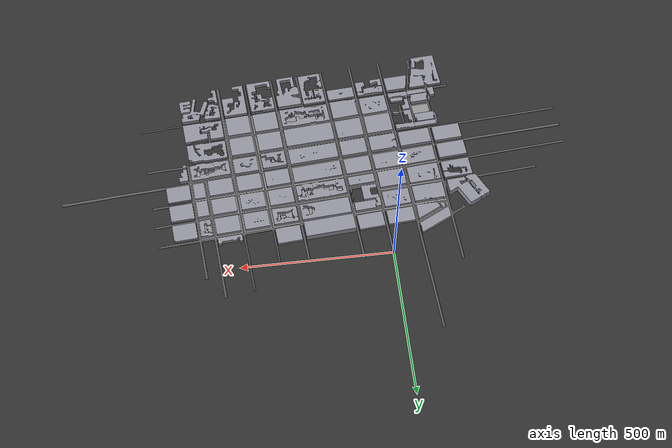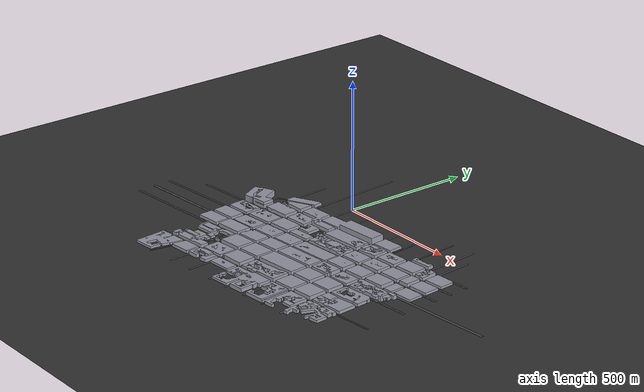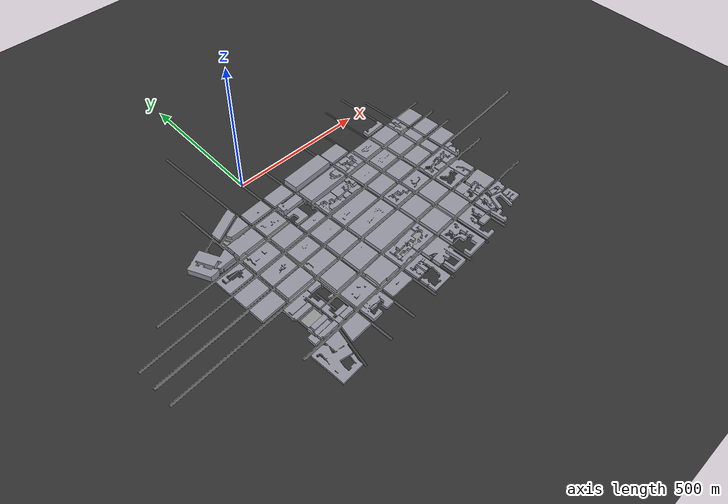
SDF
<?xml version="1.6"?>
<sdf version="1.8">
  <world name="map">

    <plugin filename="gz-sim-physics-system" name="gz::sim::systems::Physics">
    </plugin>
    <plugin filename="gz-sim-sensors-system" name="gz::sim::systems::Sensors">
    </plugin>
    <plugin filename="gz-sim-scene-broadcaster-system" name="gz::sim::systems::SceneBroadcaster">
    </plugin>
    <plugin filename="gz-sim-user-commands-system" name="gz::sim::systems::UserCommands">
    </plugin>

    <gravity>0 0 -9.81</gravity>

    <scene>
      <ambient>0.7 0.7 0.7 1</ambient>
      <background>0.9 0.9 0.9 1</background>
    </scene>

    <light name="sun" type="directional">
      <pose>0 0 50 0 0 0</pose>
      <diffuse>1 1 1 1</diffuse>
      <specular>0.1 0.1 0.1 1</specular>
      <attenuation>
        <range>500</range>
        <constant>1.0</constant>
        <linear>0.01</linear>
        <quadratic>0.001</quadratic>
      </attenuation>
      <direction>-0.5 0.5 -1</direction>
    </light>

    <gui>
      <camera name="default">
        <pose>0 0 80 0 0 0</pose>
      </camera>
    </gui>

    <include>
      <uri>model://roads_mesh</uri>
    </include>

    <include>
      <uri>model://sidewalks_mesh</uri>
    </include>

    <include>
      <uri>model://buildings_mesh</uri>
    </include>

    <model name="ground_plane">
      <static>true</static>
      <pose>0 0 0 0 0 0</pose>
      <link name="link">
        <collision name="collision">
          <geometry>
            <plane>
              <normal>0 0 1</normal>
              <size>2000 2000</size>
            </plane>
          </geometry>
        </collision>
        <visual name="visual">
          <geometry>
            <plane>
              <normal>0 0 1</normal>
              <size>2000 2000</size>
            </plane>
          </geometry>
          <material>
            <diffuse>0.2 0.2 0.2 1</diffuse>
            <ambient>0.1 0.1 0.1 1</ambient>
          </material>
        </visual>
      </link>
    </model>

  </world>
</sdf>

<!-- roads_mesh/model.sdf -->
<sdf version="1.8">
  <model name="roads_mesh">
    <static>true</static>
    <link name="road_link">
      <visual name="vis">
        <geometry>
          <mesh>
            <uri>model://roads_mesh/meshes/roads_mesh.obj</uri>
          </mesh>
        </geometry>
        <material>
          <diffuse>0.4 0.4 0.4 1</diffuse>
          <ambient>0.3 0.3 0.3 1</ambient>
        </material>
      </visual>
      <collision name="col">
        <geometry>
          <mesh>
            <uri>model://roads_mesh/meshes/roads_mesh.obj</uri>
          </mesh>
        </geometry>
      </collision>
    </link>
  </model>
</sdf>

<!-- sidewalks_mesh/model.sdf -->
<sdf version="1.8">
  <model name="sidewalks_mesh">
    <static>true</static>
    <link name="sidewalk_link">
      <visual name="vis">
        <geometry>
          <mesh>
            <uri>model://sidewalks_mesh/meshes/sidewalks_mesh.obj</uri>
          </mesh>
        </geometry>
        <material>
          <diffuse>0.6 0.6 0.6 1</diffuse>
          <ambient>0.5 0.5 0.5 1</ambient>
        </material>
      </visual>
      <collision name="col">
        <geometry>
          <mesh>
            <uri>model://sidewalks_mesh/meshes/sidewalks_mesh.obj</uri>
          </mesh>
        </geometry>
      </collision>
    </link>
  </model>
</sdf>

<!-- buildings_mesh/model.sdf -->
<sdf version="1.8">
  <model name="buildings_mesh">
    <static>true</static>
    <link name="link">
      <visual name="visual">
        <geometry>
          <mesh><uri>model://buildings_mesh/meshes/buildings.obj</uri></mesh>
        </geometry>
        <material>
          <diffuse>0.6 0.6 0.65 1</diffuse>
          <ambient>0.4 0.4 0.45 1</ambient>
        </material>
      </visual>
      <collision name="collision">
        <geometry>
          <mesh><uri>model://buildings_mesh/meshes/buildings.obj</uri></mesh>
        </geometry>
      </collision>
    </link>
  </model>
</sdf>
